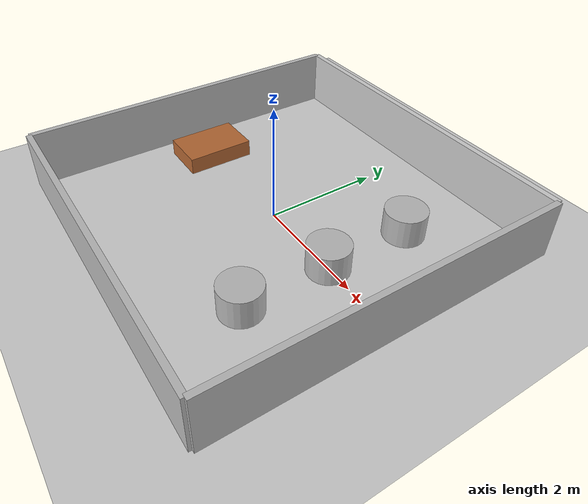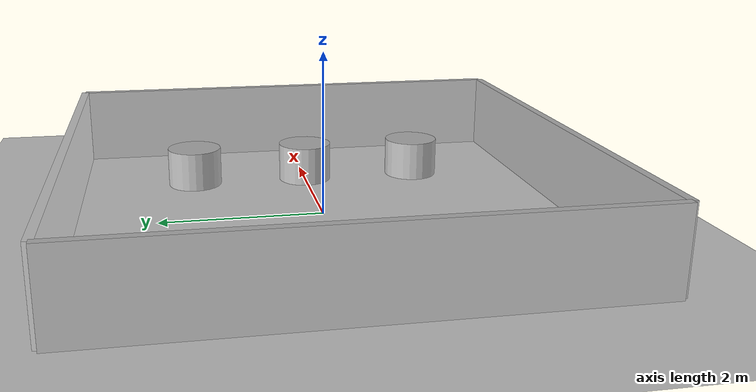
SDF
<?xml version="1.0" ?>
<sdf version="1.6">
  <world name="restaurante_simples">

    <include>
      <uri>model://sun</uri>
    </include>

    <include>
      <uri>model://ground_plane</uri>
    </include>

    <!-- Parede superior -->
    <model name="parede_superior">
      <static>true</static>
      <pose>0 3 0.5 0 0 0</pose>
      <link name="link">
        <collision name="collision">
          <geometry>
            <box>
              <size>6 0.1 1</size>
            </box>
          </geometry>
        </collision>
        <visual name="visual">
          <geometry>
            <box>
              <size>6 0.1 1</size>
            </box>
          </geometry>
          <material>
            <ambient>0.8 0.8 0.8 1</ambient>
            <diffuse>0.8 0.8 0.8 1</diffuse>
          </material>
        </visual>
      </link>
    </model>

    <!-- Parede inferior -->
    <model name="parede_inferior">
      <static>true</static>
      <pose>0 -3 0.5 0 0 0</pose>
      <link name="link">
        <collision name="collision">
          <geometry>
            <box>
              <size>6 0.1 1</size>
            </box>
          </geometry>
        </collision>
        <visual name="visual">
          <geometry>
            <box>
              <size>6 0.1 1</size>
            </box>
          </geometry>
        </visual>
      </link>
    </model>

    <!-- Parede esquerda -->
    <model name="parede_esquerda">
      <static>true</static>
      <pose>-3 0 0.5 0 0 0</pose>
      <link name="link">
        <collision name="collision">
          <geometry>
            <box>
              <size>0.1 6 1</size>
            </box>
          </geometry>
        </collision>
        <visual name="visual">
          <geometry>
            <box>
              <size>0.1 6 1</size>
            </box>
          </geometry>
        </visual>
      </link>
    </model>

    <!-- Parede direita -->
    <model name="parede_direita">
      <static>true</static>
      <pose>3 0 0.5 0 0 0</pose>
      <link name="link">
        <collision name="collision">
          <geometry>
            <box>
              <size>0.1 6 1</size>
            </box>
          </geometry>
        </collision>
        <visual name="visual">
          <geometry>
            <box>
              <size>0.1 6 1</size>
            </box>
          </geometry>
        </visual>
      </link>
    </model>

    <!-- Cozinha -->
    <model name="cozinha">
      <static>true</static>
      <pose>-2.2 0 0.15 0 0 0</pose>
      <link name="link">
        <collision name="collision">
          <geometry>
            <box>
              <size>0.8 1.2 0.3</size>
            </box>
          </geometry>
        </collision>
        <visual name="visual">
          <geometry>
            <box>
              <size>0.8 1.2 0.3</size>
            </box>
          </geometry>
          <material>
            <ambient>0.7 0.4 0.2 1</ambient>
            <diffuse>0.7 0.4 0.2 1</diffuse>
          </material>
        </visual>
      </link>
    </model>

    <!-- Mesa 1 -->
    <model name="mesa_1">
      <static>true</static>
      <pose>1.5 1.5 0.25 0 0 0</pose>
      <link name="link">
        <collision name="collision">
          <geometry>
            <cylinder>
              <radius>0.35</radius>
              <length>0.5</length>
            </cylinder>
          </geometry>
        </collision>
        <visual name="visual">
          <geometry>
            <cylinder>
              <radius>0.35</radius>
              <length>0.5</length>
            </cylinder>
          </geometry>
        </visual>
      </link>
    </model>

    <!-- Mesa 2 -->
    <model name="mesa_2">
      <static>true</static>
      <pose>1.5 0 0.25 0 0 0</pose>
      <link name="link">
        <collision name="collision">
          <geometry>
            <cylinder>
              <radius>0.35</radius>
              <length>0.5</length>
            </cylinder>
          </geometry>
        </collision>
        <visual name="visual">
          <geometry>
            <cylinder>
              <radius>0.35</radius>
              <length>0.5</length>
            </cylinder>
          </geometry>
        </visual>
      </link>
    </model>

    <!-- Mesa 3 -->
    <model name="mesa_3">
      <static>true</static>
      <pose>1.5 -1.5 0.25 0 0 0</pose>
      <link name="link">
        <collision name="collision">
          <geometry>
            <cylinder>
              <radius>0.35</radius>
              <length>0.5</length>
            </cylinder>
          </geometry>
        </collision>
        <visual name="visual">
          <geometry>
            <cylinder>
              <radius>0.35</radius>
              <length>0.5</length>
            </cylinder>
          </geometry>
        </visual>
      </link>
    </model>

  </world>
</sdf>
